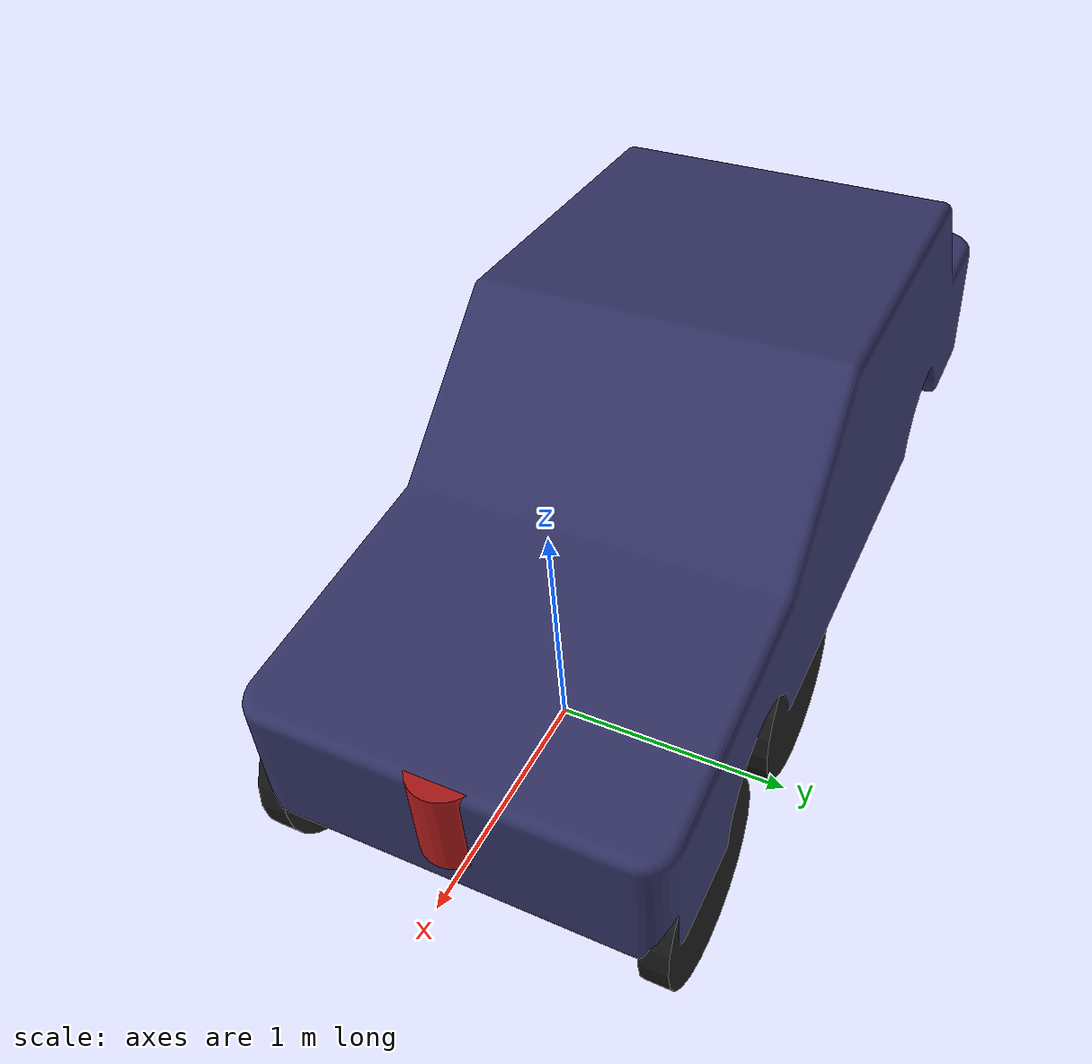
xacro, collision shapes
<?xml version="1.0"?>

<robot name="robot" xmlns:xacro="http://www.ros.org/wiki/xacro">

    <xacro:include filename="$(find isa_afa_3)/urdf/robot.gazebo" />

    <!-- Parameters -->
    <xacro:property name="chassis_mass" value="10" />

    <!-- LINKS -->

    <!-- Link - chassis -->
    <link name="link_chassis">
        <inertial>
            <mass value="${chassis_mass}" />
            <origin xyz="0 0 0.3" rpy="0 0 0" />
            <inertia ixx="1.5417" ixy="0" ixz="0" iyy="3.467" iyz="0" izz="4.742" />
        </inertial>

        <collision>
            <geometry>
                <mesh filename="package://isa_afa_3/meshes/chassis.stl" />
            </geometry>
        </collision>

        <visual>
            <geometry>
                <mesh filename="package://isa_afa_3/meshes/chassis.stl" />
            </geometry>
            <material name="DarkBlue">
                <color rgba="0.2 0.2 0.4 1" />
            </material>
        </visual>
    </link>

    <!-- Link - rear left wheel -->
    <link name="link_rear_left_wheel">
        <inertial>
            <mass value="1" />
            <origin xyz="0 0 0" rpy="0 0 0" />
            <inertia ixx="0.002526666666667" ixy="0" ixz="0" iyy="0.002526666666667" iyz="0" izz="0.005"/>
        </inertial>

        <!-- Tires -->
        <collision>
            <origin rpy="${pi/2} 0 0" xyz="0 0.18 0" />
            <geometry>
                <cylinder length="0.12" radius="0.4"/>
            </geometry>
        </collision>
        <visual>
            <origin rpy="${pi/2} 0 0" xyz="0 0.18 0" />
            <geometry>
                <mesh filename="package://isa_afa_3/meshes/wheel.stl" />
            </geometry>
            <material name="Black">
                <color rgba="0.1 0.1 0.1 1" />
            </material>
        </visual>

        <!-- Axle -->
        <collision>
            <origin rpy="${pi/2} 0 0" xyz="0 0.06 0" />
            <geometry>
                <cylinder length="0.12" radius="0.08"/>
            </geometry>
        </collision>
        <visual>
            <origin rpy="${pi/2} 0 0" xyz="0 0.06 0" />
            <geometry>
                <cylinder length="0.12" radius="0.08"/>
            </geometry>
            <material name="Grey">
                <color rgba="0.6 0.6 0.6 1" />
            </material>
        </visual>

        <!-- Hubcap -->
        <visual>
            <origin rpy="${pi/2} 0 0" xyz="0 0.18 0" />
            <geometry>
                <box size="0.02 0.5 0.02" />
            </geometry>
            <material name="Grey">
                <color rgba="0.6 0.6 0.6 1" />
            </material>
        </visual>
    </link>

    <!-- Link - rear right wheel -->
    <link name="link_rear_right_wheel">
        <inertial>
            <mass value="1" />
            <origin xyz="0 0 0" rpy="0 0 0" />
            <inertia ixx="0.002526666666667" ixy="0" ixz="0" iyy="0.002526666666667" iyz="0" izz="0.005"/>
        </inertial>

        <!-- Tires -->
        <collision>
            <origin rpy="${pi/2} 0 0" xyz="0 -0.18 0" />
            <geometry>
                <cylinder length="0.12" radius="0.4"/>
            </geometry>
        </collision>
        <visual>
            <origin rpy="${pi/2} 0 0" xyz="0 -0.18 0" />
            <geometry>
                <mesh filename="package://isa_afa_3/meshes/wheel.stl" />
            </geometry>
            <material name="Black">
                <color rgba="0.1 0.1 0.1 1" />
            </material>
        </visual>

        <!-- Axle -->
        <collision>
            <origin rpy="${pi/2} 0 0" xyz="0 -0.06 0" />
            <geometry>
                <cylinder length="0.12" radius="0.08"/>
            </geometry>
        </collision>
        <visual>
            <origin rpy="${pi/2} 0 0" xyz="0 -0.06 0" />
            <geometry>
                <cylinder length="0.12" radius="0.08"/>
            </geometry>
            <material name="Grey">
                <color rgba="0.6 0.6 0.6 1" />
            </material>
        </visual>

        <!-- Hubcap -->
        <visual>
            <origin rpy="${pi/2} 0 0" xyz="0 -0.18 0" />
            <geometry>
                <box size="0.02 0.5 0.02" />
            </geometry>
            <material name="Grey">
                <color rgba="0.6 0.6 0.6 1" />
            </material>
        </visual>
    </link>

    <!-- Link - front left wheel -->
    <link name="link_front_left_wheel">
        <inertial>
            <mass value="1" />
            <origin xyz="0 0 0" rpy="0 0 0" />
            <inertia ixx="0.002526666666667" ixy="0" ixz="0" iyy="0.002526666666667" iyz="0" izz="0.005"/>
        </inertial>

        <!-- Tires -->
        <collision>
            <origin rpy="${pi/2} 0 0" xyz="0 0.18 0" />
            <geometry>
                <cylinder length="0.12" radius="0.4"/>
            </geometry>
        </collision>
        <visual>
            <origin rpy="${pi/2} 0 0" xyz="0 0.18 0" />
            <geometry>
                <mesh filename="package://isa_afa_3/meshes/wheel.stl" />
            </geometry>
            <material name="Black">
                <color rgba="0.1 0.1 0.1 1" />
            </material>
        </visual>

        <!-- Axle -->
        <collision>
            <origin rpy="${pi/2} 0 0" xyz="0 0.06 0" />
            <geometry>
                <cylinder length="0.12" radius="0.08"/>
            </geometry>
        </collision>
        <visual>
            <origin rpy="${pi/2} 0 0" xyz="0 0.06 0" />
            <geometry>
                <cylinder length="0.12" radius="0.08"/>
            </geometry>
            <material name="Grey">
                <color rgba="0.6 0.6 0.6 1" />
            </material>
        </visual>

        <!-- Hubcap -->
        <visual>
            <origin rpy="${pi/2} 0 0" xyz="0 0.18 0" />
            <geometry>
                <box size="0.02 0.5 0.02" />
            </geometry>
            <material name="Grey">
                <color rgba="0.6 0.6 0.6 1" />
            </material>
        </visual>
    </link>

    <!-- Link - front right wheel -->
    <link name="link_front_right_wheel">
        <inertial>
            <mass value="1" />
            <origin xyz="0 0 0" rpy="0 0 0" />
            <inertia ixx="0.002526666666667" ixy="0" ixz="0" iyy="0.002526666666667" iyz="0" izz="0.005"/>
        </inertial>

        <!-- Tires -->
        <collision>
            <origin rpy="${pi/2} 0 0" xyz="0 -0.18 0" />
            <geometry>
                <cylinder length="0.12" radius="0.4"/>
            </geometry>
        </collision>
        <visual>
            <origin rpy="${pi/2} 0 0" xyz="0 -0.18 0" />
            <geometry>
                <mesh filename="package://isa_afa_3/meshes/wheel.stl" />
            </geometry>
            <material name="Black">
                <color rgba="0.1 0.1 0.1 1" />
            </material>
        </visual>

        <!-- Axle -->
        <collision>
            <origin rpy="${pi/2} 0 0" xyz="0 -0.06 0" />
            <geometry>
                <cylinder length="0.12" radius="0.08"/>
            </geometry>
        </collision>
        <visual>
            <origin rpy="${pi/2} 0 0" xyz="0 -0.06 0" />
            <geometry>
                <cylinder length="0.12" radius="0.08"/>
            </geometry>
            <material name="Grey">
                <color rgba="0.6 0.6 0.6 1" />
            </material>
        </visual>

        <!-- Hubcap -->
        <visual>
            <origin rpy="${pi/2} 0 0" xyz="0 -0.18 0" />
            <geometry>
                <box size="0.02 0.5 0.02" />
            </geometry>
            <material name="Grey">
                <color rgba="0.6 0.6 0.6 1" />
            </material>
        </visual>
    </link>

    <!-- Link - left hinge -->
    <link name="link_left_hinge">
        <inertial>
            <mass value="0.001"/>
            <inertia ixx="0.001" ixy = "0" ixz = "0" iyy="0.001" iyz = "0" izz="0.001"/>
        </inertial>
    </link>

    <!-- Link - right hinge -->
    <link name="link_right_hinge">
        <inertial>
            <mass value="0.001"/>
            <inertia ixx="0.001" ixy = "0" ixz = "0" iyy="0.001" iyz = "0" izz="0.001"/>
        </inertial>
    </link>

    <!-- JOINTS -->

    <!-- Joint - chassis / rear left wheel -->
    <joint name="joint_chassis_rear_left_wheel" type="continuous">
        <origin rpy="0 0 0" xyz="-0.5 0.65 0" />
        <child link="link_rear_left_wheel" />
        <parent link="link_chassis" />
        <axis rpy="0 0 0" xyz="0 1 0" />
        <limit effort="10000" velocity="1000" />
        <joint_properties damping="1.0" friction="1.0" />
    </joint>

    <!-- Joint - chassis / rear right wheel -->
    <joint name="joint_chassis_rear_right_wheel" type="continuous">
        <origin rpy="0 0 0" xyz="-0.5 -0.65 0" />
        <child link="link_rear_right_wheel" />
        <parent link="link_chassis" />
        <axis rpy="0 0 0" xyz="0 1 0" />
        <limit effort="10000" velocity="1000" />
        <joint_properties damping="1.0" friction="1.0" />
    </joint>

    <!-- Joint - chassis / left hinge -->
    <joint name="joint_steering_left_hinge" type="revolute">
        <child link="link_left_hinge" />
        <parent link="link_chassis" />
        <origin xyz="0.5 0.65 0" rpy="0 0 0" />
        <axis xyz="0 0 1" />
        <limit lower="-0.7" upper="0.7" effort="10" velocity="100" />
    </joint>

    <!-- Joint - chassis / right hinge -->
    <joint name="joint_steering_right_hinge" type="revolute">
        <child link="link_right_hinge" />
        <parent link="link_chassis" />
        <origin xyz="0.5 -0.65 0" rpy="0 0 0" />
        <axis xyz="0 0 1" />
        <limit lower="-0.7" upper="0.7" effort="10" velocity="100" />
    </joint>

    <!-- Joint - left hinge / front left wheel -->
    <joint name="joint_left_hinge_wheel" type="continuous">
        <child link="link_front_left_wheel" />
        <parent link="link_left_hinge" />
        <origin xyz="0 0 0" rpy="0 0 0" />
        <axis xyz="0 1 0" />
    </joint>

    <!-- Joint - right hinge / front right wheel -->
    <joint name="joint_right_hinge_wheel" type="continuous">
        <child link="link_front_right_wheel" />
        <parent link="link_right_hinge" />
        <origin xyz="0 0 0" rpy="0 0 0" />
        <axis xyz="0 1 0" />
    </joint>

    <!-- Laser scan -->
    <joint name="joint_laser_scan_chassis" type="fixed">
        <origin rpy="0 0 0" xyz="0.8 0 0.4" />
        <child link="link_laser_scan" />
        <parent link="link_chassis" />
        <joint_properties damping="1.0" friction="1.0" />
    </joint>
    <link name="link_laser_scan">
        <inertial>
            <origin xyz="0 0 0" rpy="0 0 0" />
            <mass value="0.5" />
            <inertia ixx="0.000252666666667" ixy="0" ixz="0" iyy="0.000252666666667" iyz="0" izz="0.0005"/>
        </inertial>
        <visual>
            <origin xyz="0 0 0" rpy="0 0 0" />
            <geometry>
                <cylinder radius="0.15" length="0.40"/>
            </geometry>
            <material name="Red">
                <color rgba="0.7 0.1 0.1 1" />
            </material>
        </visual>
        <collision>
            <origin xyz="0 0 0" rpy="0 0 0"/>
            <geometry>
                <cylinder radius="0.15" length="0.40"/>
            </geometry>
        </collision>
    </link>

</robot>
